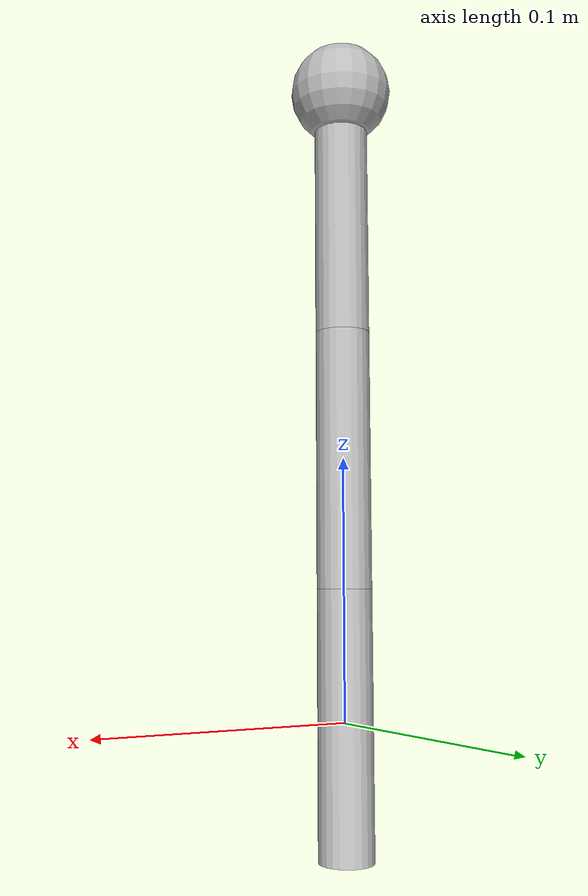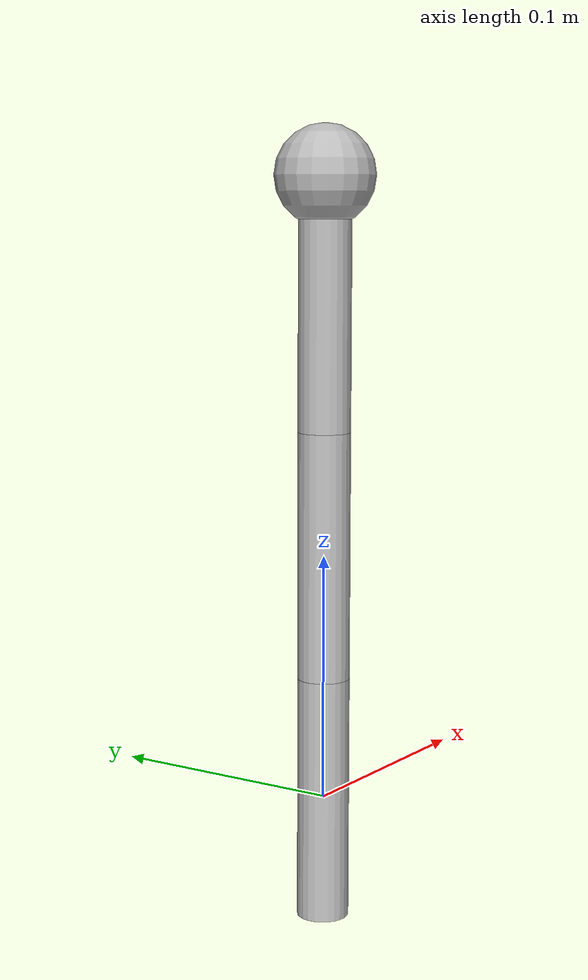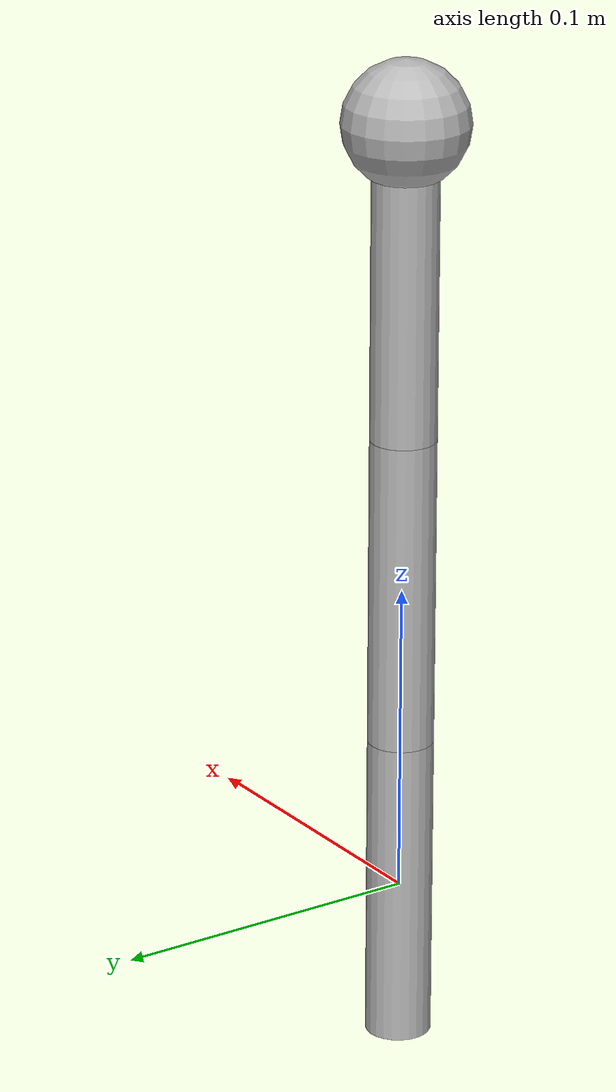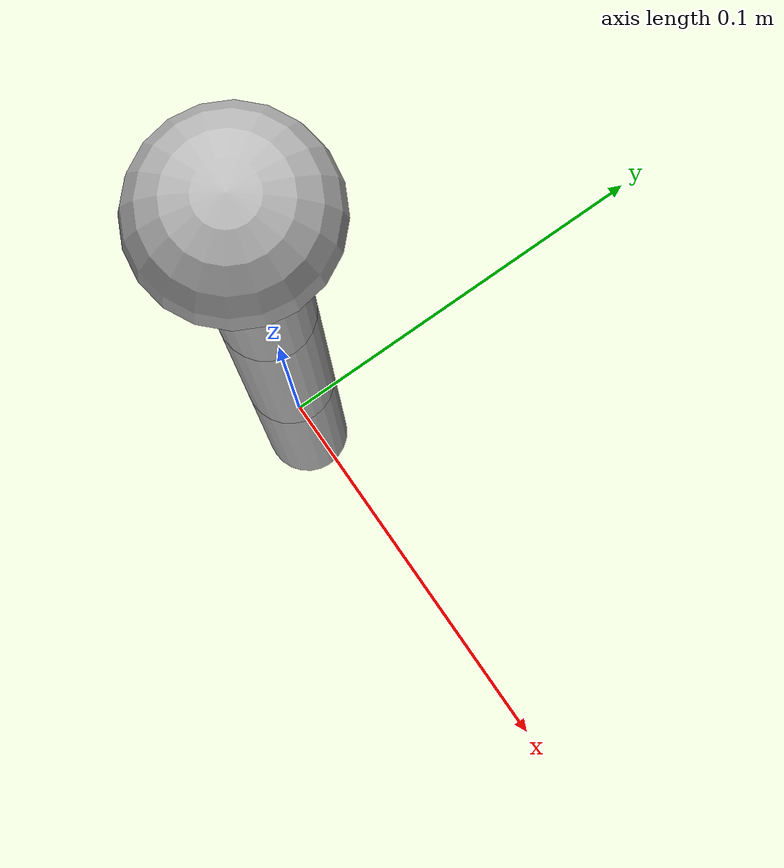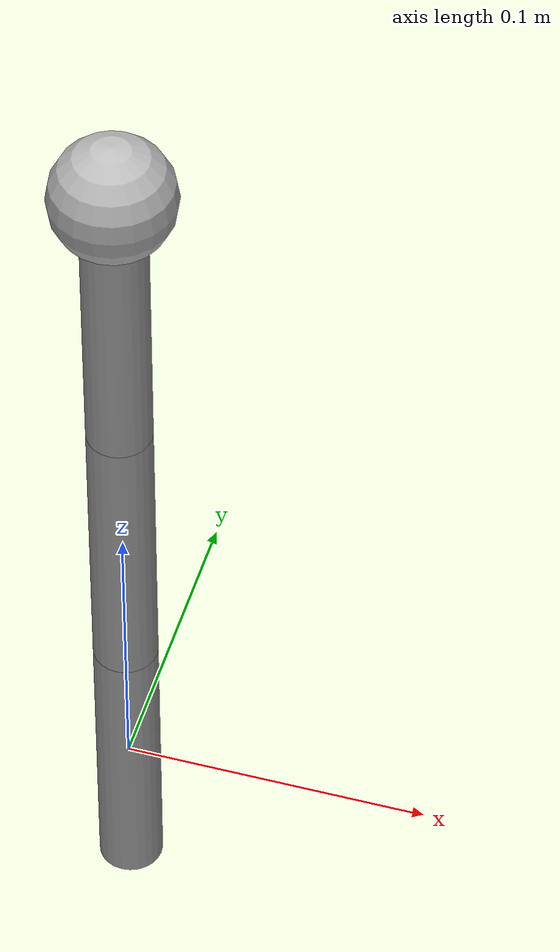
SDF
<?xml version="1.0" encoding="UTF-8"?>
<sdf version='1.9'>
  <model name='dummy_arm' xmlns:xacro="http://www.ros.org/wiki/xacro">
	<link name="base_link">
		<inertial>
			<mass>0.000000001</mass>
			<inertia>
				<ixx>0.000000001</ixx>
				<iyy>0.000000001</iyy>
				<izz>0.000000001</izz>
			</inertia>
		</inertial>
		<pose> 0 0 0 0 0 0</pose>
	</link>
	<link name="base_link_intermediate">
		<inertial>
			<mass>0.000000001</mass>
			<inertia>
				<ixx>0.000000001</ixx>
				<iyy>0.000000001</iyy>
				<izz>0.000000001</izz>
			</inertia>
		</inertial>
		<pose> 0 0 0 0 0 0</pose>
	</link>
	<joint name="base_joint" type="revolute">
		<pose>0 0 -0.05 0 0 0</pose>
		<parent>base_link</parent>
		<child>base_link_intermediate</child>
		<axis>
			<xyz>0 0 1</xyz>
			<limit>
				<lower>-1.57079632679</lower>
				<upper>1.57079632679</upper>
			</limit>
			<dynamics>
				<spring_reference>0</spring_reference>
				<spring_stiffness>0.45</spring_stiffness>
			</dynamics>
		</axis>
	</joint>
	<link name="link0">
		<inertial>
			<mass>0.05</mass>
			<inertia>
				<ixx>0.000043045</ixx>
				<iyy>0.000043045</iyy>
				<izz>0.000002756</izz>
			</inertia>
		</inertial>
		<gravity>true</gravity>
      		<velocity_decay/>
		<visual name="link0_visual">
			<pose> 0 0 0 0 0 0</pose>
			<geometry>
				<cylinder>
					<radius>0.0105</radius>
					<length>0.1</length>
				</cylinder>
			</geometry>
		</visual>
		<collision name="link0_collision">
			<pose> 0 0 0 0 0 0</pose>
			<geometry>
				<cylinder>
					<radius>0.0105</radius>
					<length>0.1</length>
				</cylinder>
			</geometry>
			<surface>
				<contact>
					<ode>
						<min_depth>0.001</min_depth>
						<max_vel>0</max_vel>
					</ode>
				</contact>
				<friction>
					<ode/>
				</friction>
			</surface>
		</collision>
	</link>
	<joint name="link0_joint" type="revolute">
		<pose>0 0 -0.05 0 0 0</pose>
		<parent>base_link</parent>
		<child>link0</child>
		<axis>
			<xyz>1 0 0</xyz>
			<limit>
				<lower>-1.57079632679</lower>
				<upper>1.57079632679</upper>
			</limit>
			<dynamics>
				<spring_reference>0</spring_reference>
				<spring_stiffness>0.45</spring_stiffness>
			</dynamics>
		</axis>
	</joint>
	<link name="link1">
		<inertial>
			<mass>0.05</mass>
			<inertia>
				<ixx>0.000043045</ixx>
				<iyy>0.000043045</iyy>
				<izz>0.000002756</izz>
			</inertia>
		</inertial>
		<gravity>true</gravity>
      		<velocity_decay/>
		<visual name="link1_visual">
			<pose> 0 0 0.1 0 0 0</pose>
			<geometry>
				<cylinder>
					<radius>0.0105</radius>
					<length>0.1</length>
				</cylinder>
			</geometry>
		</visual>
		<collision name="link1_collision">
			<pose> 0 0 0.1 0 0 0</pose>
			<geometry>
				<cylinder>
					<radius>0.0105</radius>
					<length>0.1</length>
				</cylinder>
			</geometry>
			<surface>
				<contact>
					<ode>
						<min_depth>0.001</min_depth>
						<max_vel>0</max_vel>
					</ode>
				</contact>
				<friction>
					<ode/>
				</friction>
			</surface>
		</collision>
	</link>
	<joint name="link1_joint" type="revolute">
		<pose>0 0 0.05 0 0 0</pose>
		<parent>link0</parent>
		<child>link1</child>
		<axis>
			<xyz>1 0 0</xyz>
			<limit>
				<lower>-1.57079632679</lower>
				<upper>1.57079632679</upper>
			</limit>
			<dynamics>
				<spring_reference>0</spring_reference>
				<spring_stiffness>0.45</spring_stiffness>
			</dynamics>
		</axis>
	</joint>
	<link name="link2">
		<inertial>
			<mass>0.05</mass>
			<inertia>
				<ixx>0.000043045</ixx>
				<iyy>0.000043045</iyy>
				<izz>0.000002756</izz>
			</inertia>
		</inertial>
		<gravity>true</gravity>
      		<velocity_decay/>
		<visual name="link2_visual">
			<pose> 0 0 0.2 0 0 0</pose>
			<geometry>
				<cylinder>
					<radius>0.0105</radius>
					<length>0.1</length>
				</cylinder>
			</geometry>
		</visual>
		<collision name="link2_collision">
			<pose> 0 0 0.2 0 0 0</pose>
			<geometry>
				<cylinder>
					<radius>0.0105</radius>
					<length>0.1</length>
				</cylinder>
			</geometry>
			<surface>
				<contact>
					<ode>
						<min_depth>0.001</min_depth>
						<max_vel>0</max_vel>
					</ode>
				</contact>
				<friction>
					<ode/>
				</friction>
			</surface>
		</collision>
	</link>
	<joint name="link2_joint" type="revolute">
		<pose>0 0 0.15 0 0 0</pose>
		<parent>link1</parent>
		<child>link2</child>
		<axis>
			<xyz>1 0 0</xyz>
			<limit>
				<lower>-1.57079632679</lower>
				<upper>1.57079632679</upper>
			</limit>
			<dynamics>
				<spring_reference>0</spring_reference>
				<spring_stiffness>0.45</spring_stiffness>
			</dynamics>
		</axis>
	</joint>
	<link name="ee">
		<inertial>
			<mass>0.01</mass>
			<inertia>
				<ixx>0.0000006667</ixx>
				<iyy>0.0000006667</iyy>
				<izz>0.0000006667</izz>
			</inertia>
		</inertial>
		<gravity>true</gravity>
      		<velocity_decay/>
		<visual name="ee_visual">
			<pose> 0 0 0.25 0 0 0</pose>
			<geometry>
				<sphere>
					<radius>0.02</radius>
				</sphere>
			</geometry>
		</visual>
		<collision name="ee_collision">
			<pose> 0 0 0.25 0 0 0</pose>
			<geometry>
				<sphere>
					<radius>0.02</radius>
				</sphere>
			</geometry>
			<surface>
				<contact>
					<ode>
						<min_depth>0.001</min_depth>
						<max_vel>0</max_vel>
					</ode>
				</contact>
				<friction>
					<ode/>
				</friction>
			</surface>
		</collision>

		<sensor name='contact_sensor' type='contact'>
			<contact>
				<collision>ee_collision</collision>
			</contact>
		</sensor>
	</link>
	<joint name="ee_joint" type="fixed">
		<pose>0 0 0.25 0 0 0</pose>
		<parent>link2</parent>
		<child>ee</child>
	</joint>

	 <!-- Joint states plugin -->
	<plugin filename="gz-sim-joint-state-publisher-system" name="gz::sim::systems::JointStatePublisher"/>
	<plugin filename="PressureSensor" name="gz::sim::systems::PressureSensor"/>
  </model>
</sdf>
